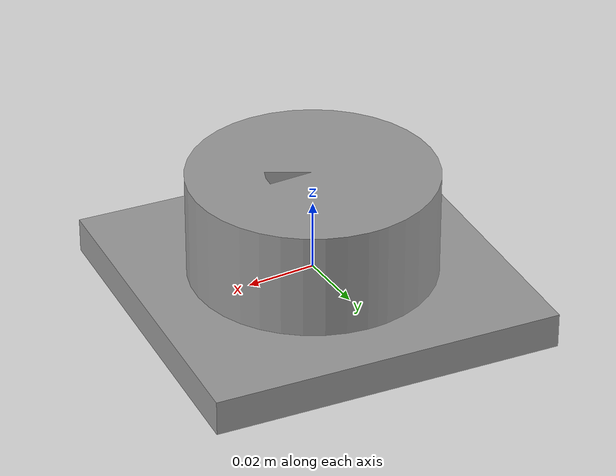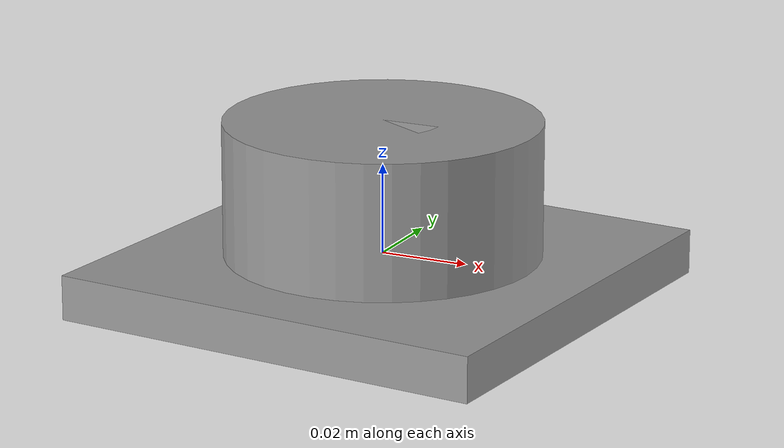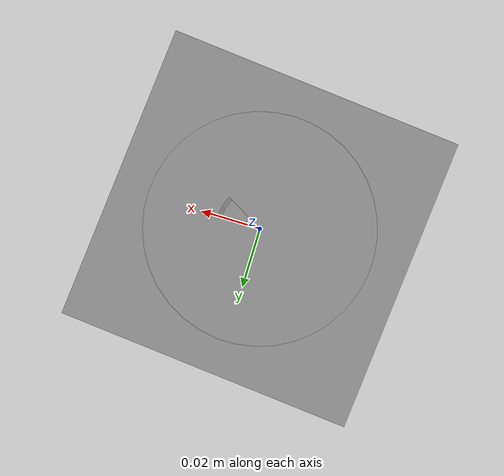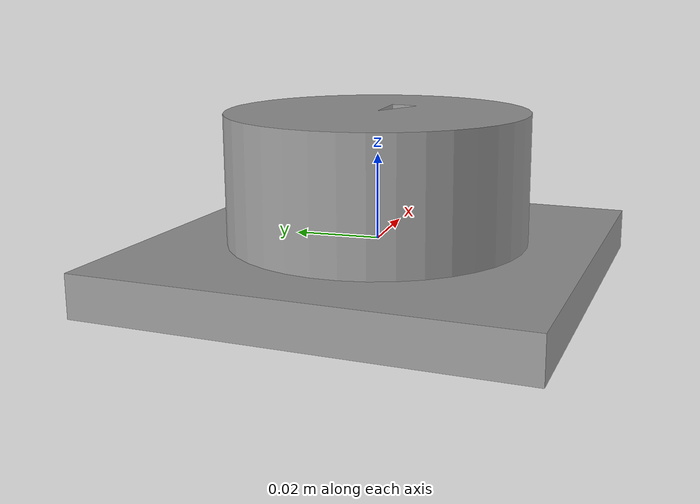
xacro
<?xml version="1.0"?>
<robot name="epos2" xmlns:xacro="http://ros.org/wiki/xacro">
  <xacro:include filename="$(find epos2_description)/urdf/epos2.xacro" />
  <xacro:include filename="$(find epos2_description)/urdf/epos2.ros2_control.xacro" />

<xacro:epos2  parent="world">
    <origin xyz="0 0 0" rpy="3.14 0 0" />
</xacro:epos2>

<link name="world"/>
  <xacro:epos2_ros2_control name="epos2_ros2_control"/>
</robot>

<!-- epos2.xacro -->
<robot xmlns:xacro="http://www.ros.org/wiki/xacro">

<xacro:include filename="$(find epos2_description)/urdf/materials.xacro" />

<xacro:macro name="epos2" params="parent *origin">

  <joint name="epos2_fixed" type="fixed">
	    <xacro:insert_block name="origin" />
	    <parent link="${parent}"/>
	    <child link="base_link"/>
	  </joint>
  <link
    name="base_link">
    <inertial>
      <origin
        xyz="-6.07153216591882E-18 -1.38777878078145E-17 0.005"
        rpy="0 0 0" />
      <mass
        value="0.0992146018366027" />
      <inertia
        ixx="8.41552129434506E-05"
        ixy="1.11669786591442E-20"
        ixz="-1.64881251002989E-22"
        iyy="8.41552129434506E-05"
        iyz="-1.20530670953825E-21"
        izz="0.000166656849189625" />
    </inertial>
    <visual>
      <origin
        xyz="0 0 0"
        rpy="0 0 0" />
      <geometry>
        <mesh
          filename="package://epos2_description/meshes/base_link.STL" />
      </geometry>
      <material
        name="grey">
      </material>
    </visual>
    <collision>
      <origin
        xyz="0 0 0"
        rpy="0 0 0" />
      <geometry>
        <mesh
          filename="package://epos2_description/meshes/base_link.STL" />
      </geometry>
    </collision>
  </link>
  <link
    name="link1">
    <inertial>
      <origin
        xyz="-9.98E-05 -1.648E-05 0.02"
        rpy="0 0 0" />
      <mass
        value="0.15217" />
      <inertia
        ixx="6.7425E-05"
        ixy="2.3907E-08"
        ixz="-3.0548E-22"
        iyy="6.7284E-05"
        iyz="2.3279E-20"
        izz="9.4132E-05" />
    </inertial>
    <visual>
      <origin
        xyz="0 0 0"
        rpy="0 0 0" />
      <geometry>
        <mesh
          filename="package://epos2_description/meshes/link1.STL" />
      </geometry>
      <material
        name="grey">
      </material>
    </visual>
    <collision>
      <origin
        xyz="0 0 0"
        rpy="0 0 0" />
      <geometry>
        <mesh
          filename="package://epos2_description/meshes/link1.STL" />
      </geometry>
    </collision>
  </link>
  <joint
    name="joint_1"
    type="revolute">
    <origin
      xyz="0 0 0.01"
      rpy="0 0 0.091478" />
    <parent
      link="base_link" />
    <child
      link="link1" />
    <axis
      xyz="0 0 1" />
	    <limit
	      lower="-3.14"
	      upper="3.14"
	      effort="1000"
        velocity="6.5" />
      <dynamics damping="0.7"/>
  </joint>

</xacro:macro>
</robot>
